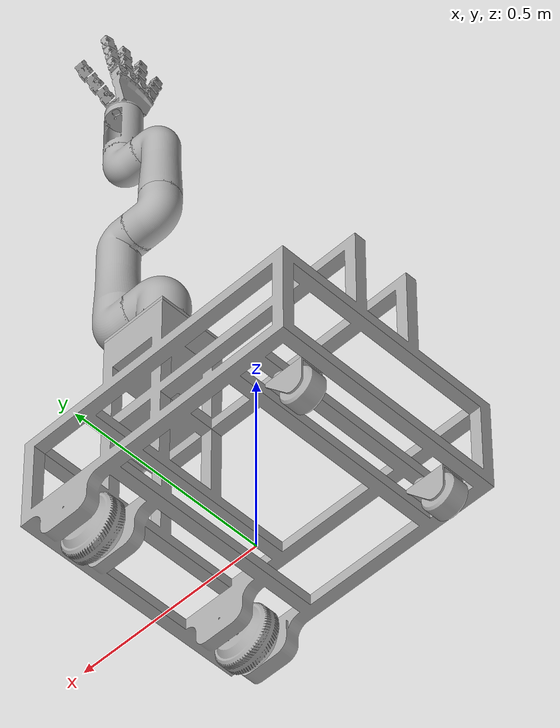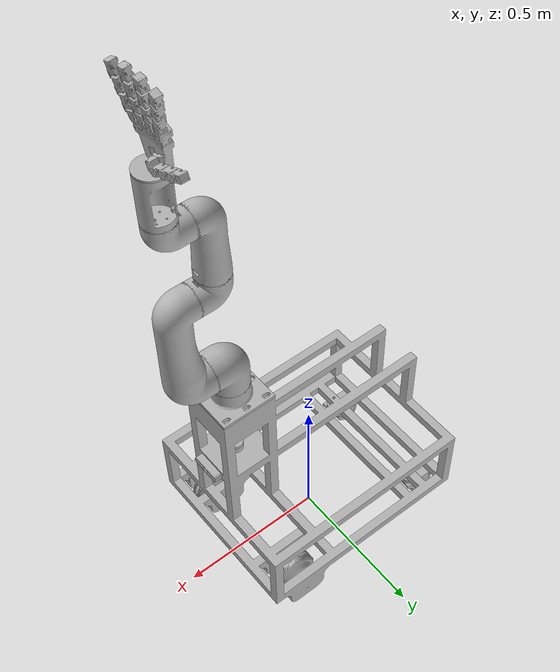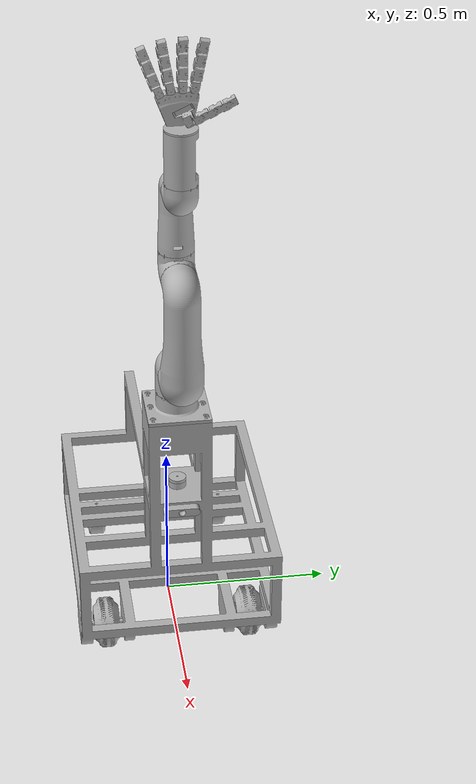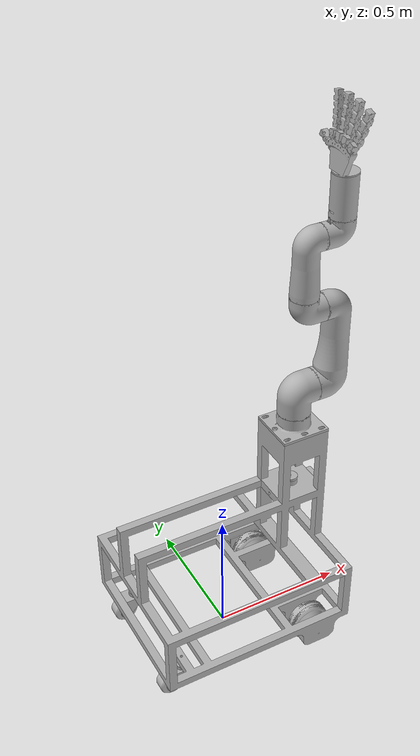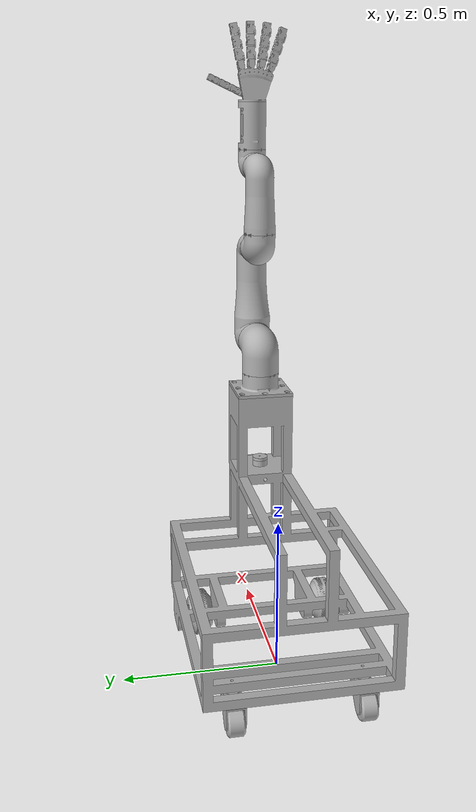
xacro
<?xml version="1.0" ?>
<robot name="mk_mobile" xmlns:xacro="http://www.ros.org/wiki/xacro">

<xacro:include filename="$(find mk_mobile_description)/urdf/materials.xacro" />
<xacro:include filename="$(find mk_mobile_description)/urdf/mk_mobile.trans" />
<xacro:include filename="$(find mk_mobile_description)/urdf/mk_mobile.gazebo" />
<link name="base_link">
  <inertial>
    <origin xyz="0.10507029952866492 3.720651260453716e-17 0.4023673367319081" rpy="0 0 0"/>
    <mass value="122.80918209867345"/>
    <inertia ixx="12.505573" iyy="16.746929" izz="11.768837" ixy="-0.0" iyz="0.0" ixz="-2.743569"/>
  </inertial>
  <visual>
    <origin xyz="0 0 0" rpy="0 0 0"/>
    <geometry>
      <mesh filename="package://mk_mobile_description/meshes/base_link.stl" scale="0.001 0.001 0.001"/>
    </geometry>
    <material name="silver"/>
  </visual>
  <collision>
    <origin xyz="0 0 0" rpy="0 0 0"/>
    <geometry>
      <mesh filename="package://mk_mobile_description/meshes/base_link.stl" scale="0.001 0.001 0.001"/>
    </geometry>
  </collision>
</link>

<link name="right_wheel_1">
  <inertial>
    <origin xyz="-9.90529795258377e-06 0.04704068656167476 9.43689570931383e-16" rpy="0 0 0"/>
    <mass value="8.402833582836633"/>
    <inertia ixx="0.013886" iyy="0.021888" izz="0.013887" ixy="3e-06" iyz="0.0" ixz="0.0"/>
  </inertial>
  <visual>
    <origin xyz="-0.2475 0.265 -0.076" rpy="0 0 0"/>
    <geometry>
      <mesh filename="package://mk_mobile_description/meshes/right_wheel_1.stl" scale="0.001 0.001 0.001"/>
    </geometry>
    <material name="silver"/>
  </visual>
  <collision>
    <origin xyz="-0.2475 0.265 -0.076" rpy="0 0 0"/>
    <geometry>
      <mesh filename="package://mk_mobile_description/meshes/right_wheel_1.stl" scale="0.001 0.001 0.001"/>
    </geometry>
  </collision>
</link>

<link name="left_wheel_1">
  <inertial>
    <origin xyz="9.905297963352933e-06 -0.04704068656167476 9.43689570931383e-16" rpy="0 0 0"/>
    <mass value="8.402833582836633"/>
    <inertia ixx="0.013886" iyy="0.021888" izz="0.013887" ixy="3e-06" iyz="-0.0" ixz="-0.0"/>
  </inertial>
  <visual>
    <origin xyz="-0.2475 -0.265 -0.076" rpy="0 0 0"/>
    <geometry>
      <mesh filename="package://mk_mobile_description/meshes/left_wheel_1.stl" scale="0.001 0.001 0.001"/>
    </geometry>
    <material name="silver"/>
  </visual>
  <collision>
    <origin xyz="-0.2475 -0.265 -0.076" rpy="0 0 0"/>
    <geometry>
      <mesh filename="package://mk_mobile_description/meshes/left_wheel_1.stl" scale="0.001 0.001 0.001"/>
    </geometry>
  </collision>
</link>

<link name="right_caster_part_1_1">
  <inertial>
    <origin xyz="0.0 0.0 -0.00799999999999998" rpy="0 0 0"/>
    <mass value="0.24661502330679866"/>
    <inertia ixx="4.4e-05" iyy="4.4e-05" izz="7.7e-05" ixy="-0.0" iyz="0.0" ixz="-0.0"/>
  </inertial>
  <visual>
    <origin xyz="0.28 0.2 -0.116" rpy="0 0 0"/>
    <geometry>
      <mesh filename="package://mk_mobile_description/meshes/right_caster_part_1_1.stl" scale="0.001 0.001 0.001"/>
    </geometry>
    <material name="silver"/>
  </visual>
  <collision>
    <origin xyz="0.28 0.2 -0.116" rpy="0 0 0"/>
    <geometry>
      <mesh filename="package://mk_mobile_description/meshes/right_caster_part_1_1.stl" scale="0.001 0.001 0.001"/>
    </geometry>
  </collision>
</link>

<link name="right_caster_part_2_1">
  <inertial>
    <origin xyz="-0.03222572045994965 4.996003610813204e-16 -0.02321312390143325" rpy="0 0 0"/>
    <mass value="0.6353484712483609"/>
    <inertia ixx="0.000694" iyy="0.000767" izz="0.000821" ixy="-0.0" iyz="0.0" ixz="-0.000122"/>
  </inertial>
  <visual>
    <origin xyz="0.28 0.2 -0.1" rpy="0 0 0"/>
    <geometry>
      <mesh filename="package://mk_mobile_description/meshes/right_caster_part_2_1.stl" scale="0.001 0.001 0.001"/>
    </geometry>
    <material name="silver"/>
  </visual>
  <collision>
    <origin xyz="0.28 0.2 -0.1" rpy="0 0 0"/>
    <geometry>
      <mesh filename="package://mk_mobile_description/meshes/right_caster_part_2_1.stl" scale="0.001 0.001 0.001"/>
    </geometry>
  </collision>
</link>

<link name="right_caster_wheel_1">
  <inertial>
    <origin xyz="0.0 0.024999999999999994 9.71445146547012e-17" rpy="0 0 0"/>
    <mass value="2.443543855931531"/>
    <inertia ixx="0.001705" iyy="0.002428" izz="0.001705" ixy="0.0" iyz="-0.0" ixz="0.0"/>
  </inertial>
  <visual>
    <origin xyz="0.33 0.225 -0.045" rpy="0 0 0"/>
    <geometry>
      <mesh filename="package://mk_mobile_description/meshes/right_caster_wheel_1.stl" scale="0.001 0.001 0.001"/>
    </geometry>
    <material name="silver"/>
  </visual>
  <collision>
    <origin xyz="0.33 0.225 -0.045" rpy="0 0 0"/>
    <geometry>
      <mesh filename="package://mk_mobile_description/meshes/right_caster_wheel_1.stl" scale="0.001 0.001 0.001"/>
    </geometry>
  </collision>
</link>

<link name="left_caster_part_1_1">
  <inertial>
    <origin xyz="-5.551115123125783e-17 5.551115123125783e-17 -0.008000000000000146" rpy="0 0 0"/>
    <mass value="0.24661502330679866"/>
    <inertia ixx="4.4e-05" iyy="4.4e-05" izz="7.7e-05" ixy="0.0" iyz="-0.0" ixz="-0.0"/>
  </inertial>
  <visual>
    <origin xyz="0.28 -0.2 -0.116" rpy="0 0 0"/>
    <geometry>
      <mesh filename="package://mk_mobile_description/meshes/left_caster_part_1_1.stl" scale="0.001 0.001 0.001"/>
    </geometry>
    <material name="silver"/>
  </visual>
  <collision>
    <origin xyz="0.28 -0.2 -0.116" rpy="0 0 0"/>
    <geometry>
      <mesh filename="package://mk_mobile_description/meshes/left_caster_part_1_1.stl" scale="0.001 0.001 0.001"/>
    </geometry>
  </collision>
</link>

<link name="left_caster_part_2_1">
  <inertial>
    <origin xyz="-0.0322257204599497 -5.828670879282072e-16 -0.02321312390143318" rpy="0 0 0"/>
    <mass value="0.6353484712483609"/>
    <inertia ixx="0.000694" iyy="0.000767" izz="0.000821" ixy="0.0" iyz="-0.0" ixz="-0.000122"/>
  </inertial>
  <visual>
    <origin xyz="0.28 -0.2 -0.1" rpy="0 0 0"/>
    <geometry>
      <mesh filename="package://mk_mobile_description/meshes/left_caster_part_2_1.stl" scale="0.001 0.001 0.001"/>
    </geometry>
    <material name="silver"/>
  </visual>
  <collision>
    <origin xyz="0.28 -0.2 -0.1" rpy="0 0 0"/>
    <geometry>
      <mesh filename="package://mk_mobile_description/meshes/left_caster_part_2_1.stl" scale="0.001 0.001 0.001"/>
    </geometry>
  </collision>
</link>

<link name="left_caster_wheel_1">
  <inertial>
    <origin xyz="1.1102230246251565e-16 -0.024999999999999994 8.326672684688674e-17" rpy="0 0 0"/>
    <mass value="2.443543855931531"/>
    <inertia ixx="0.001705" iyy="0.002428" izz="0.001705" ixy="0.0" iyz="0.0" ixz="0.0"/>
  </inertial>
  <visual>
    <origin xyz="0.33 -0.225 -0.045" rpy="0 0 0"/>
    <geometry>
      <mesh filename="package://mk_mobile_description/meshes/left_caster_wheel_1.stl" scale="0.001 0.001 0.001"/>
    </geometry>
    <material name="silver"/>
  </visual>
  <collision>
    <origin xyz="0.33 -0.225 -0.045" rpy="0 0 0"/>
    <geometry>
      <mesh filename="package://mk_mobile_description/meshes/left_caster_wheel_1.stl" scale="0.001 0.001 0.001"/>
    </geometry>
  </collision>
</link>

<link name="imu_1">
  <inertial>
    <origin xyz="0.0025000000000000022 1.4135798584282317e-18 1.1102230246251565e-16" rpy="0 0 0"/>
    <mass value="0.01233075116533992"/>
    <inertia ixx="1e-06" iyy="0.0" izz="0.0" ixy="-0.0" iyz="0.0" ixz="-0.0"/>
  </inertial>
  <visual>
    <origin xyz="-0.375 -0.0 -0.571" rpy="0 0 0"/>
    <geometry>
      <mesh filename="package://mk_mobile_description/meshes/imu_1.stl" scale="0.001 0.001 0.001"/>
    </geometry>
    <material name="silver"/>
  </visual>
  <collision>
    <origin xyz="-0.375 -0.0 -0.571" rpy="0 0 0"/>
    <geometry>
      <mesh filename="package://mk_mobile_description/meshes/imu_1.stl" scale="0.001 0.001 0.001"/>
    </geometry>
  </collision>
</link>

<link name="camera_1">
  <inertial>
    <origin xyz="0.012500000000000011 -1.5103477475751965e-13 1.1102230246251565e-16" rpy="0 0 0"/>
    <mass value="0.4271802376525143"/>
    <inertia ixx="0.000429" iyy="4.5e-05" izz="0.000429" ixy="-0.0" iyz="-0.0" ixz="0.0"/>
  </inertial>
  <visual>
    <origin xyz="-0.375 -0.0 -0.571" rpy="0 0 0"/>
    <geometry>
      <mesh filename="package://mk_mobile_description/meshes/camera_1.stl" scale="0.001 0.001 0.001"/>
    </geometry>
    <material name="silver"/>
  </visual>
  <collision>
    <origin xyz="-0.375 -0.0 -0.571" rpy="0 0 0"/>
    <geometry>
      <mesh filename="package://mk_mobile_description/meshes/camera_1.stl" scale="0.001 0.001 0.001"/>
    </geometry>
  </collision>
</link>

<link name="lidar_1">
  <inertial>
    <origin xyz="2.6645352591003757e-15 3.289785852342063e-17 0.0050000000000001155" rpy="0 0 0"/>
    <mass value="0.15259304567108165"/>
    <inertia ixx="2.5e-05" iyy="2.5e-05" izz="4.8e-05" ixy="0.0" iyz="-0.0" ixz="0.0"/>
  </inertial>
  <visual>
    <origin xyz="-0.285 -0.0 -0.611" rpy="0 0 0"/>
    <geometry>
      <mesh filename="package://mk_mobile_description/meshes/lidar_1.stl" scale="0.001 0.001 0.001"/>
    </geometry>
    <material name="silver"/>
  </visual>
  <collision>
    <origin xyz="-0.285 -0.0 -0.611" rpy="0 0 0"/>
    <geometry>
      <mesh filename="package://mk_mobile_description/meshes/lidar_1.stl" scale="0.001 0.001 0.001"/>
    </geometry>
  </collision>
</link>

<link name="link3_1">
  <inertial>
    <origin xyz="-0.051142738703755464 4.0397517393967134e-13 0.01475806682339087" rpy="0 0 0"/>
    <mass value="1.9656169541020214"/>
    <inertia ixx="0.003791" iyy="0.004814" izz="0.004679" ixy="0.0" iyz="-0.0" ixz="0.000672"/>
  </inertial>
  <visual>
    <origin xyz="-0.375 -0.0 -1.317" rpy="0 0 0"/>
    <geometry>
      <mesh filename="package://mk_mobile_description/meshes/link3_1.stl" scale="0.001 0.001 0.001"/>
    </geometry>
    <material name="silver"/>
  </visual>
  <collision>
    <origin xyz="-0.375 -0.0 -1.317" rpy="0 0 0"/>
    <geometry>
      <mesh filename="package://mk_mobile_description/meshes/link3_1.stl" scale="0.001 0.001 0.001"/>
    </geometry>
  </collision>
</link>

<link name="palm_1">
  <inertial>
    <origin xyz="-0.011448466162556459 0.0004901571166414636 0.10296443552390278" rpy="0 0 0"/>
    <mass value="4.1566068946079335"/>
    <inertia ixx="0.029141" iyy="0.020164" izz="0.010469" ixy="-0.000527" iyz="0.003192" ixz="-0.000823"/>
  </inertial>
  <visual>
    <origin xyz="-0.4335 -0.0 -1.7805" rpy="0 0 0"/>
    <geometry>
      <mesh filename="package://mk_mobile_description/meshes/palm_1.stl" scale="0.001 0.001 0.001"/>
    </geometry>
    <material name="silver"/>
  </visual>
  <collision>
    <origin xyz="-0.4335 -0.0 -1.7805" rpy="0 0 0"/>
    <geometry>
      <mesh filename="package://mk_mobile_description/meshes/palm_1.stl" scale="0.001 0.001 0.001"/>
    </geometry>
  </collision>
</link>

<link name="arm_base_link_1">
  <inertial>
    <origin xyz="0.0012535955018752598 -2.069857607036337e-16 0.016880943454350095" rpy="0 0 0"/>
    <mass value="4.415971366531325"/>
    <inertia ixx="0.010003" iyy="0.009958" izz="0.017765" ixy="0.0" iyz="-0.0" ixz="3e-05"/>
  </inertial>
  <visual>
    <origin xyz="-0.285 -0.0 -0.856" rpy="0 0 0"/>
    <geometry>
      <mesh filename="package://mk_mobile_description/meshes/arm_base_link_1.stl" scale="0.001 0.001 0.001"/>
    </geometry>
    <material name="silver"/>
  </visual>
  <collision>
    <origin xyz="-0.285 -0.0 -0.856" rpy="0 0 0"/>
    <geometry>
      <mesh filename="package://mk_mobile_description/meshes/arm_base_link_1.stl" scale="0.001 0.001 0.001"/>
    </geometry>
  </collision>
</link>

<link name="link1_1">
  <inertial>
    <origin xyz="0.012757531934531774 1.218640869423519e-12 0.06719265641075811" rpy="0 0 0"/>
    <mass value="3.0929952957501237"/>
    <inertia ixx="0.011232" iyy="0.011123" izz="0.009013" ixy="0.0" iyz="0.0" ixz="-0.001286"/>
  </inertial>
  <visual>
    <origin xyz="-0.285 -0.0 -0.917" rpy="0 0 0"/>
    <geometry>
      <mesh filename="package://mk_mobile_description/meshes/link1_1.stl" scale="0.001 0.001 0.001"/>
    </geometry>
    <material name="silver"/>
  </visual>
  <collision>
    <origin xyz="-0.285 -0.0 -0.917" rpy="0 0 0"/>
    <geometry>
      <mesh filename="package://mk_mobile_description/meshes/link1_1.stl" scale="0.001 0.001 0.001"/>
    </geometry>
  </collision>
</link>

<link name="link2_1">
  <inertial>
    <origin xyz="0.07202168862575331 -3.5313629523581563e-12 0.14450019168182338" rpy="0 0 0"/>
    <mass value="15.846338073110624"/>
    <inertia ixx="0.132567" iyy="0.13402" izz="0.029131" ixy="-0.0" iyz="-0.0" ixz="-0.007531"/>
  </inertial>
  <visual>
    <origin xyz="-0.356 -0.0 -1.007" rpy="0 0 0"/>
    <geometry>
      <mesh filename="package://mk_mobile_description/meshes/link2_1.stl" scale="0.001 0.001 0.001"/>
    </geometry>
    <material name="silver"/>
  </visual>
  <collision>
    <origin xyz="-0.356 -0.0 -1.007" rpy="0 0 0"/>
    <geometry>
      <mesh filename="package://mk_mobile_description/meshes/link2_1.stl" scale="0.001 0.001 0.001"/>
    </geometry>
  </collision>
</link>

<link name="link4_1">
  <inertial>
    <origin xyz="0.0026933234512468984 3.8855923862654855e-08 0.08440714552064343" rpy="0 0 0"/>
    <mass value="7.842285748942116"/>
    <inertia ixx="0.033994" iyy="0.034351" izz="0.010735" ixy="-0.0" iyz="-0.0" ixz="-0.003025"/>
  </inertial>
  <visual>
    <origin xyz="-0.305 -0.0 -1.373" rpy="0 0 0"/>
    <geometry>
      <mesh filename="package://mk_mobile_description/meshes/link4_1.stl" scale="0.001 0.001 0.001"/>
    </geometry>
    <material name="silver"/>
  </visual>
  <collision>
    <origin xyz="-0.305 -0.0 -1.373" rpy="0 0 0"/>
    <geometry>
      <mesh filename="package://mk_mobile_description/meshes/link4_1.stl" scale="0.001 0.001 0.001"/>
    </geometry>
  </collision>
</link>

<link name="link5_1">
  <inertial>
    <origin xyz="0.05596025373496882 -2.0965830246475977e-07 0.016043221095647597" rpy="0 0 0"/>
    <mass value="1.4488766384865912"/>
    <inertia ixx="0.002409" iyy="0.003275" izz="0.003165" ixy="0.0" iyz="0.0" ixz="-0.000572"/>
  </inertial>
  <visual>
    <origin xyz="-0.3585 -0.0 -1.577" rpy="0 0 0"/>
    <geometry>
      <mesh filename="package://mk_mobile_description/meshes/link5_1.stl" scale="0.001 0.001 0.001"/>
    </geometry>
    <material name="silver"/>
  </visual>
  <collision>
    <origin xyz="-0.3585 -0.0 -1.577" rpy="0 0 0"/>
    <geometry>
      <mesh filename="package://mk_mobile_description/meshes/link5_1.stl" scale="0.001 0.001 0.001"/>
    </geometry>
  </collision>
</link>

<link name="link6_1">
  <inertial>
    <origin xyz="0.0001043343737502922 -0.005286826016070152 0.07445480614360811" rpy="0 0 0"/>
    <mass value="1.2273340069715037"/>
    <inertia ixx="0.004651" iyy="0.004904" izz="0.001868" ixy="-1e-06" iyz="2.6e-05" ixz="6e-06"/>
  </inertial>
  <visual>
    <origin xyz="-0.4335 -0.0 -1.6305" rpy="0 0 0"/>
    <geometry>
      <mesh filename="package://mk_mobile_description/meshes/link6_1.stl" scale="0.001 0.001 0.001"/>
    </geometry>
    <material name="silver"/>
  </visual>
  <collision>
    <origin xyz="-0.4335 -0.0 -1.6305" rpy="0 0 0"/>
    <geometry>
      <mesh filename="package://mk_mobile_description/meshes/link6_1.stl" scale="0.001 0.001 0.001"/>
    </geometry>
  </collision>
</link>

<joint name="joint_right_wheel" type="continuous">
  <origin xyz="0.2475 -0.265 0.076" rpy="0 0 0"/>
  <parent link="base_link"/>
  <child link="right_wheel_1"/>
  <axis xyz="0.0 1.0 0.0"/>
</joint>

<joint name="joint_left_wheel" type="continuous">
  <origin xyz="0.2475 0.265 0.076" rpy="0 0 0"/>
  <parent link="base_link"/>
  <child link="left_wheel_1"/>
  <axis xyz="0.0 -1.0 0.0"/>
</joint>

<joint name="joint_caster_right_1" type="continuous">
  <origin xyz="-0.28 -0.2 0.116" rpy="0 0 0"/>
  <parent link="base_link"/>
  <child link="right_caster_part_1_1"/>
  <axis xyz="0.0 0.0 -1.0"/>
</joint>

<joint name="joint_caster_right_2" type="continuous">
  <origin xyz="0.0 0.0 -0.016" rpy="0 0 0"/>
  <parent link="right_caster_part_1_1"/>
  <child link="right_caster_part_2_1"/>
  <axis xyz="0.0 -0.0 -1.0"/>
</joint>

<joint name="joint_caster_right_3" type="continuous">
  <origin xyz="-0.05 -0.025 -0.055" rpy="0 0 0"/>
  <parent link="right_caster_part_2_1"/>
  <child link="right_caster_wheel_1"/>
  <axis xyz="0.0 1.0 -0.0"/>
</joint>

<joint name="joint_caster_left_1" type="continuous">
  <origin xyz="-0.28 0.2 0.116" rpy="0 0 0"/>
  <parent link="base_link"/>
  <child link="left_caster_part_1_1"/>
  <axis xyz="0.0 0.0 -1.0"/>
</joint>

<joint name="joint_caster_left_2" type="continuous">
  <origin xyz="0.0 0.0 -0.016" rpy="0 0 0"/>
  <parent link="left_caster_part_1_1"/>
  <child link="left_caster_part_2_1"/>
  <axis xyz="0.0 0.0 -1.0"/>
</joint>

<joint name="joint_caster_left_3" type="continuous">
  <origin xyz="-0.05 0.025 -0.055" rpy="0 0 0"/>
  <parent link="left_caster_part_2_1"/>
  <child link="left_caster_wheel_1"/>
  <axis xyz="-0.0 -1.0 0.0"/>
</joint>

<joint name="fixed_imu" type="fixed">
  <origin xyz="0.375 0.0 0.571" rpy="0 0 0"/>
  <parent link="base_link"/>
  <child link="imu_1"/>
</joint>

<joint name="fixed_camera" type="fixed">
  <origin xyz="0.375 0.0 0.571" rpy="0 0 0"/>
  <parent link="base_link"/>
  <child link="camera_1"/>
</joint>

<joint name="joint_lidar" type="continuous">
  <origin xyz="0.285 0.0 0.611" rpy="0 0 0"/>
  <parent link="base_link"/>
  <child link="lidar_1"/>
  <axis xyz="0.0 0.0 -1.0"/>
</joint>

<joint name="joint3" type="continuous">
  <origin xyz="0.019 0.0 0.31" rpy="0 0 0"/>
  <parent link="link2_1"/>
  <child link="link3_1"/>
  <axis xyz="1.0 0.0 0.0"/>
</joint>

<joint name="fixed_hand_link6" type="fixed">
  <origin xyz="0.0 0.0 0.15" rpy="0 0 0"/>
  <parent link="link6_1"/>
  <child link="palm_1"/>
</joint>

<joint name="fixed_arm" type="fixed">
  <origin xyz="0.285 0.0 0.856" rpy="0 0 0"/>
  <parent link="base_link"/>
  <child link="arm_base_link_1"/>
</joint>

<joint name="joint1" type="continuous">
  <origin xyz="0.0 0.0 0.061" rpy="0 0 0"/>
  <parent link="arm_base_link_1"/>
  <child link="link1_1"/>
  <axis xyz="0.0 0.0 -1.0"/>
</joint>

<joint name="joint2" type="continuous">
  <origin xyz="0.071 0.0 0.09" rpy="0 0 0"/>
  <parent link="link1_1"/>
  <child link="link2_1"/>
  <axis xyz="-1.0 -0.0 -0.0"/>
</joint>

<joint name="joint4" type="continuous">
  <origin xyz="-0.07 0.0 0.056" rpy="0 0 0"/>
  <parent link="link3_1"/>
  <child link="link4_1"/>
  <axis xyz="0.0 -0.0 -1.0"/>
</joint>

<joint name="joint5" type="continuous">
  <origin xyz="0.0535 0.0 0.204" rpy="0 0 0"/>
  <parent link="link4_1"/>
  <child link="link5_1"/>
  <axis xyz="-1.0 0.0 -0.0"/>
</joint>

<joint name="joint6" type="continuous">
  <origin xyz="0.075 0.0 0.0535" rpy="0 0 0"/>
  <parent link="link5_1"/>
  <child link="link6_1"/>
  <axis xyz="0.0 0.0 -1.0"/>
</joint>

<link name="camera_link"/>
<joint name="realsense_to_urdf_camera_link" type="fixed">
  <parent link="camera_1"/>
  <child link="camera_link"/>
  <origin xyz="0 0 0" rpy="0 0 0"/>
</joint>

<link name="camera_gyro_frame"/>
<joint name="9250_to_urdf_imu_link" type="fixed">
  <parent link="camera_link"/>
  <child link="camera_gyro_frame"/>
  <origin xyz="0 0 -0.571" rpy="0 0 0"/>
</joint>

<link name="camera_imu_optical_frame"/>
<joint name="aaaaaa" type="fixed">
  <parent link="camera_gyro_frame"/>
  <child link="camera_imu_optical_frame"/>
  <origin xyz="0 0 -0.0" rpy="0 0 0"/>
</joint>

<link name="laser"/>
<joint name="laser_to_urdf_lidar_link" type="fixed">
  <parent link="lidar_1"/>
  <child link="laser"/>
  <origin xyz="0 0 0.0" rpy="0 0 0"/>
</joint>

<link name="base_footprint"/>
<joint name="baselink_to_basefoorprint" type="fixed">
  <parent link="base_footprint"/>
  <child link="base_link"/>
  <origin xyz="0 0 0" rpy="0 0 0"/>
</joint>

</robot>

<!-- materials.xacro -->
<robot name="mk_mobile" xmlns:xacro="http://www.ros.org/wiki/xacro" >

<material name="silver">
  <color rgba="0.700 0.700 0.700 1.000"/>
</material>

</robot>

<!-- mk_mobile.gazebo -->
<robot name="mk_mobile" xmlns:xacro="http://www.ros.org/wiki/xacro" >

<xacro:property name="body_color" value="Gazebo/Silver" />

<gazebo>
  <plugin name="control" filename="libgazebo_ros_control.so"/>
</gazebo>
<gazebo reference="base_link">
  <material>${body_color}</material>
  <mu1>0.2</mu1>
  <mu2>0.2</mu2>
  <selfCollide>true</selfCollide>
  <gravity>true</gravity>
</gazebo>

<gazebo reference="right_wheel_1">
  <material>${body_color}</material>
  <mu1>0.2</mu1>
  <mu2>0.2</mu2>
  <selfCollide>true</selfCollide>
</gazebo>

<gazebo reference="left_wheel_1">
  <material>${body_color}</material>
  <mu1>0.2</mu1>
  <mu2>0.2</mu2>
  <selfCollide>true</selfCollide>
</gazebo>

<gazebo reference="right_caster_part_1_1">
  <material>${body_color}</material>
  <mu1>0.2</mu1>
  <mu2>0.2</mu2>
  <selfCollide>true</selfCollide>
</gazebo>

<gazebo reference="right_caster_part_2_1">
  <material>${body_color}</material>
  <mu1>0.2</mu1>
  <mu2>0.2</mu2>
  <selfCollide>true</selfCollide>
</gazebo>

<gazebo reference="right_caster_wheel_1">
  <material>${body_color}</material>
  <mu1>0.2</mu1>
  <mu2>0.2</mu2>
  <selfCollide>true</selfCollide>
</gazebo>

<gazebo reference="left_caster_part_1_1">
  <material>${body_color}</material>
  <mu1>0.2</mu1>
  <mu2>0.2</mu2>
  <selfCollide>true</selfCollide>
</gazebo>

<gazebo reference="left_caster_part_2_1">
  <material>${body_color}</material>
  <mu1>0.2</mu1>
  <mu2>0.2</mu2>
  <selfCollide>true</selfCollide>
</gazebo>

<gazebo reference="left_caster_wheel_1">
  <material>${body_color}</material>
  <mu1>0.2</mu1>
  <mu2>0.2</mu2>
  <selfCollide>true</selfCollide>
</gazebo>

<gazebo reference="imu_1">
  <material>${body_color}</material>
  <mu1>0.2</mu1>
  <mu2>0.2</mu2>
  <selfCollide>true</selfCollide>
</gazebo>

<gazebo reference="camera_1">
  <material>${body_color}</material>
  <mu1>0.2</mu1>
  <mu2>0.2</mu2>
  <selfCollide>true</selfCollide>
</gazebo>

<gazebo reference="lidar_1">
  <material>${body_color}</material>
  <mu1>0.2</mu1>
  <mu2>0.2</mu2>
  <selfCollide>true</selfCollide>
</gazebo>

<gazebo reference="link3_1">
  <material>${body_color}</material>
  <mu1>0.2</mu1>
  <mu2>0.2</mu2>
  <selfCollide>true</selfCollide>
</gazebo>

<gazebo reference="palm_1">
  <material>${body_color}</material>
  <mu1>0.2</mu1>
  <mu2>0.2</mu2>
  <selfCollide>true</selfCollide>
</gazebo>

<gazebo reference="arm_base_link_1">
  <material>${body_color}</material>
  <mu1>0.2</mu1>
  <mu2>0.2</mu2>
  <selfCollide>true</selfCollide>
</gazebo>

<gazebo reference="link1_1">
  <material>${body_color}</material>
  <mu1>0.2</mu1>
  <mu2>0.2</mu2>
  <selfCollide>true</selfCollide>
</gazebo>

<gazebo reference="link2_1">
  <material>${body_color}</material>
  <mu1>0.2</mu1>
  <mu2>0.2</mu2>
  <selfCollide>true</selfCollide>
</gazebo>

<gazebo reference="link4_1">
  <material>${body_color}</material>
  <mu1>0.2</mu1>
  <mu2>0.2</mu2>
  <selfCollide>true</selfCollide>
</gazebo>

<gazebo reference="link5_1">
  <material>${body_color}</material>
  <mu1>0.2</mu1>
  <mu2>0.2</mu2>
  <selfCollide>true</selfCollide>
</gazebo>

<gazebo reference="link6_1">
  <material>${body_color}</material>
  <mu1>0.2</mu1>
  <mu2>0.2</mu2>
  <selfCollide>true</selfCollide>
</gazebo>

</robot>
